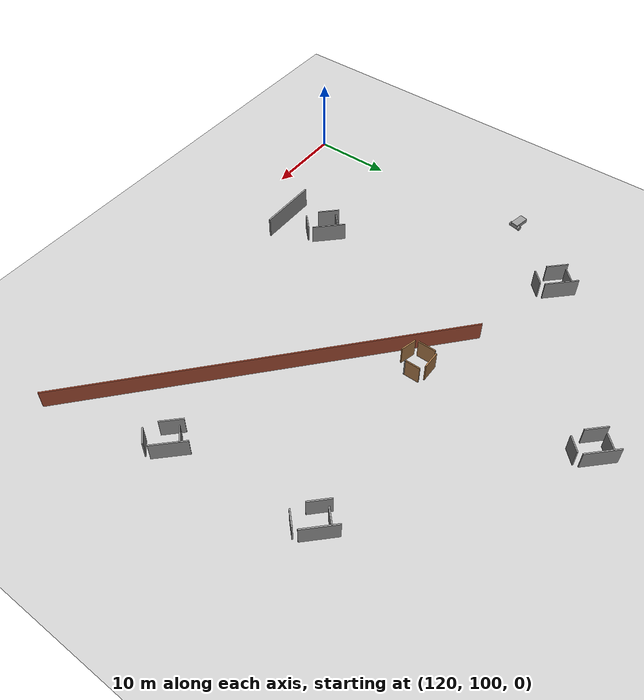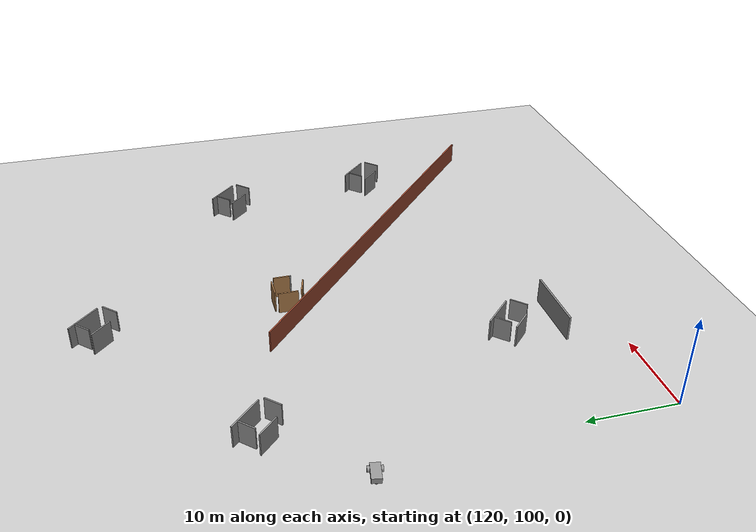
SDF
<sdf version="1.5">
 <world name="default">
  <model name="ground_plane">
   <static>1</static>
   <link name="link">
    <collision name="collision">
     <geometry><plane><normal>0 0 1</normal><size>100 100</size></plane></geometry>
     <surface><friction><ode><mu>100</mu><mu2>50</mu2></ode></friction></surface>
    </collision>
    <visual name="visual">
     <cast_shadows>0</cast_shadows>
     <geometry><plane><normal>0 0 1</normal><size>100 100</size></plane></geometry>
     <material>
      <script><uri>file://media/materials/scripts/gazebo.material</uri><name>Gazebo/Grey</name></script>
     </material>
    </visual>
   </link>
  </model>
  <model name="obs1_1_clone">
   <pose>146.543 133 0 0 -0 0</pose>
   <link name="Wall_10">
    <collision name="Wall_10_Collision">
     <geometry><box><size>2 0.15 2.5</size></box></geometry>
     <pose>0 0 1.25 0 -0 0</pose>
    </collision>
    <visual name="Wall_10_Visual">
     <pose>0 0 1.25 0 -0 0</pose>
     <geometry><box><size>2 0.15 2.5</size></box></geometry>
     <material>
      <script><uri>file://media/materials/scripts/gazebo.material</uri><name>Gazebo/Wood</name></script>
      <ambient>1 1 1 1</ambient>
     </material>
    </visual>
    <pose>-0.505188 -1.46687 0 0 0 -0.261799</pose>
   </link>
   <link name="Wall_2">
    <collision name="Wall_2_Collision">
     <geometry><box><size>2.25 0.15 2.5</size></box></geometry>
     <pose>0 0 1.25 0 -0 0</pose>
    </collision>
    <visual name="Wall_2_Visual">
     <pose>0 0 1.25 0 -0 0</pose>
     <geometry><box><size>2.25 0.15 2.5</size></box></geometry>
     <material>
      <script><uri>file://media/materials/scripts/gazebo.material</uri><name>Gazebo/Wood</name></script>
      <ambient>1 1 1 1</ambient>
     </material>
    </visual>
    <pose>-1.58039 0.313508 0 0 0 -1.5708</pose>
   </link>
   <link name="Wall_5">
    <collision name="Wall_5_Collision">
     <geometry><box><size>2.25 0.15 2.5</size></box></geometry>
     <pose>0 0 1.25 0 -0 0</pose>
    </collision>
    <visual name="Wall_5_Visual">
     <pose>0 0 1.25 0 -0 0</pose>
     <geometry><box><size>2.25 0.15 2.5</size></box></geometry>
     <material>
      <script><uri>file://media/materials/scripts/gazebo.material</uri><name>Gazebo/Wood</name></script>
      <ambient>1 1 1 1</ambient>
     </material>
    </visual>
    <pose>-0.185262 1.72313 0 0 -0 0</pose>
   </link>
   <link name="Wall_7">
    <collision name="Wall_7_Collision">
     <geometry><box><size>2 0.15 2.5</size></box></geometry>
     <pose>0 0 1.25 0 -0 0</pose>
    </collision>
    <visual name="Wall_7_Visual">
     <pose>0 0 1.25 0 -0 0</pose>
     <geometry><box><size>2 0.15 2.5</size></box></geometry>
     <material>
      <script><uri>file://media/materials/scripts/gazebo.material</uri><name>Gazebo/Wood</name></script>
      <ambient>1 1 1 1</ambient>
     </material>
    </visual>
    <pose>1.58039 0.398833 0 0 0 -1.5708</pose>
   </link>
   <link name="Wall_8">
    <collision name="Wall_8_Collision">
     <geometry><box><size>0.15 0.15 2.5</size></box></geometry>
     <pose>0 0 1.25 0 -0 0</pose>
    </collision>
    <visual name="Wall_8_Visual">
     <pose>0 0 1.25 0 -0 0</pose>
     <geometry><box><size>0.15 0.15 2.5</size></box></geometry>
     <material>
      <script><uri>file://media/materials/scripts/gazebo.material</uri><name>Gazebo/Grey</name></script>
      <ambient>1 1 1 1</ambient>
     </material>
    </visual>
    <pose>1.58039 -0.526167 0 0 -0 0</pose>
   </link>
   <static>1</static>
  </model>
  <model name="wall1_clone_0_clone">
   <pose>157 120 0 0 -0 2.41454</pose>
   <link name="Wall_0">
    <collision name="Wall_0_Collision">
     <geometry><box><size>50 0.15 2.5</size></box></geometry>
     <pose>0 0 1.25 0 -0 0</pose>
    </collision>
    <visual name="Wall_0_Visual">
     <pose>0 0 1.25 0 -0 0</pose>
     <geometry><box><size>50 0.15 2.5</size></box></geometry>
     <material>
      <script><uri>file://media/materials/scripts/gazebo.material</uri><name>Gazebo/Bricks</name></script>
      <ambient>1 1 1 1</ambient>
     </material>
    </visual>
    <pose>1e-06 0 0 0 -0 3.14159</pose>
   </link>
   <static>1</static>
  </model>
  <model name="grey_wall_clone_1_clone_0_clone_0">
   <static>1</static>
   <link name="link">
    <pose>0 0 1.4 0 -0 0</pose>
    <collision name="collision"><geometry><box><size>7.5 0.2 2.8</size></box></geometry></collision>
    <visual name="visual">
     <cast_shadows>0</cast_shadows>
     <geometry><box><size>7.5 0.2 2.8</size></box></geometry>
     <material>
      <script>
       <uri>model://grey_wall/materials/scripts</uri>
       <uri>model://grey_wall/materials/textures</uri>
       <name>vrc/grey_wall</name>
      </script>
     </material>
    </visual>
   </link>
   <pose>136 106 0 0 -0 0</pose>
  </model>
  <model name="obs2_5_clone_clone_0">
   <pose>135 111.597 0 0 -0 0</pose>
   <link name="Wall_0">
    <collision name="Wall_0_Collision">
     <geometry><box><size>2 0.15 2.5</size></box></geometry>
     <pose>0 0 1.25 0 -0 0</pose>
    </collision>
    <visual name="Wall_0_Visual">
     <pose>0 0 1.25 0 -0 0</pose>
     <geometry><box><size>2 0.15 2.5</size></box></geometry>
     <material>
      <script><uri>file://media/materials/scripts/gazebo.material</uri><name>Gazebo/Grey</name></script>
      <ambient>1 1 1 1</ambient>
     </material>
    </visual>
    <pose>-0.796332 1.10862 0 0 -0 0.785398</pose>
   </link>
   <link name="Wall_2">
    <collision name="Wall_2_Collision">
     <geometry><box><size>4.25 0.15 2.5</size></box></geometry>
     <pose>0 0 1.25 0 -0 0</pose>
    </collision>
    <visual name="Wall_2_Visual">
     <pose>0 0 1.25 0 -0 0</pose>
     <geometry><box><size>4.25 0.15 2.5</size></box></geometry>
     <material>
      <script><uri>file://media/materials/scripts/gazebo.material</uri><name>Gazebo/Grey</name></script>
      <ambient>1 1 1 1</ambient>
     </material>
    </visual>
    <pose>0.773928 0.982661 0 0 0 -0.785398</pose>
   </link>
   <link name="Wall_4">
    <collision name="Wall_4_Collision">
     <geometry><box><size>2.75 0.15 2.5</size></box></geometry>
     <pose>0 0 1.25 0 -0 0</pose>
    </collision>
    <visual name="Wall_4_Visual">
     <pose>0 0 1.25 0 -0 0</pose>
     <geometry><box><size>2.75 0.15 2.5</size></box></geometry>
     <material>
      <script><uri>file://media/materials/scripts/gazebo.material</uri><name>Gazebo/Grey</name></script>
      <ambient>1 1 1 1</ambient>
     </material>
    </visual>
    <pose>-1.45556 -0.740711 0 0 0 -0.785398</pose>
   </link>
   <link name="Wall_6">
    <collision name="Wall_6_Collision">
     <geometry><box><size>2 0.15 2.5</size></box></geometry>
     <pose>0 0 1.25 0 -0 0</pose>
    </collision>
    <visual name="Wall_6_Visual">
     <pose>0 0 1.25 0 -0 0</pose>
     <geometry><box><size>2 0.15 2.5</size></box></geometry>
     <material>
      <script><uri>file://media/materials/scripts/gazebo.material</uri><name>Gazebo/Grey</name></script>
      <ambient>1 1 1 1</ambient>
     </material>
    </visual>
    <pose>1.72073 -1.77816 0 0 -0 0.785398</pose>
   </link>
   <static>1</static>
  </model>
  <model name="follower_vehicle_clone">
   <pose>118.501 130.933 0.322842 0.000663 -0.00385 -0.189088</pose>
   <link name="chassis">
    <pose>-0.151427 -0 0.175 0 -0 0</pose>
    <inertial>
     <mass>1.14395</mass>
     <inertia>
      <ixx>0.126164</ixx>
      <ixy>0</ixy>
      <ixz>0</ixz>
      <iyy>0.416519</iyy>
      <iyz>0</iyz>
      <izz>0.481014</izz>
     </inertia>
    </inertial>
    <visual name="visual">
     <geometry><box><size>2.01142 1 0.568726</size></box></geometry>
     <material>
      <script><uri>file://media/materials/scripts/gazebo.material</uri><name>Gazebo/Grey</name></script>
     </material>
    </visual>
    <collision name="collision">
     <geometry><box><size>2.01142 1 0.568726</size></box></geometry>
     <surface>
      <friction><ode><mu>1</mu><mu2>1</mu2><fdir1>0 0 0</fdir1><slip1>0</slip1><slip2>0</slip2></ode></friction>
      <bounce><restitution_coefficient>0</restitution_coefficient><threshold>1e+06</threshold></bounce>
      <contact>
       <collide_without_contact>0</collide_without_contact>
       <collide_without_contact_bitmask>1</collide_without_contact_bitmask>
       <collide_bitmask>1</collide_bitmask>
       <ode>
        <soft_cfm>0</soft_cfm>
        <soft_erp>0.2</soft_erp>
        <kp>1e+13</kp>
        <kd>1</kd>
        <max_vel>0.01</max_vel>
        <min_depth>0</min_depth>
       </ode>
      </contact>
     </surface>
    </collision>
   </link>
   <link name="wheel_1">
    <pose>0.554283 0.625029 -0.025 1.5707 -0 0</pose>
    <inertial>
     <mass>2</mass>
     <inertia><ixx>0.145833</ixx><ixy>0</ixy><ixz>0</ixz><iyy>0.145833</iyy><iyz>0</iyz><izz>0.125</izz></inertia>
    </inertial>
    <visual name="visual">
     <geometry><cylinder><radius>0.3</radius><length>0.25</length></cylinder></geometry>
     <material>
      <script><uri>file://media/materials/scripts/gazebo.material</uri><name>Gazebo/Grey</name></script>
     </material>
    </visual>
    <collision name="collision">
     <geometry><cylinder><radius>0.3</radius><length>0.25</length></cylinder></geometry>
     <surface>
      <friction><ode><mu>1</mu><mu2>1</mu2><fdir1>0 0 0</fdir1><slip1>0</slip1><slip2>0</slip2></ode></friction>
      <bounce><restitution_coefficient>0</restitution_coefficient><threshold>1e+06</threshold></bounce>
      <contact>
       <collide_without_contact>0</collide_without_contact>
       <collide_without_contact_bitmask>1</collide_without_contact_bitmask>
       <collide_bitmask>1</collide_bitmask>
       <ode>
        <soft_cfm>0</soft_cfm>
        <soft_erp>0.2</soft_erp>
        <kp>1e+13</kp>
        <kd>1</kd>
        <max_vel>0.01</max_vel>
        <min_depth>0</min_depth>
       </ode>
      </contact>
     </surface>
    </collision>
   </link>
   <link name="wheel_2">
    <pose>0.554282 -0.625029 -0.025 1.5707 -0 0</pose>
    <inertial>
     <mass>2</mass>
     <inertia><ixx>0.145833</ixx><ixy>0</ixy><ixz>0</ixz><iyy>0.145833</iyy><iyz>0</iyz><izz>0.125</izz></inertia>
    </inertial>
    <visual name="visual">
     <geometry><cylinder><radius>0.3</radius><length>0.25</length></cylinder></geometry>
     <material>
      <script><uri>file://media/materials/scripts/gazebo.material</uri><name>Gazebo/Grey</name></script>
     </material>
    </visual>
    <collision name="collision">
     <geometry><cylinder><radius>0.3</radius><length>0.25</length></cylinder></geometry>
     <surface>
      <friction><ode><mu>1</mu><mu2>1</mu2><fdir1>0 0 0</fdir1><slip1>0</slip1><slip2>0</slip2></ode></friction>
      <bounce><restitution_coefficient>0</restitution_coefficient><threshold>1e+06</threshold></bounce>
      <contact>
       <collide_without_contact>0</collide_without_contact>
       <collide_without_contact_bitmask>1</collide_without_contact_bitmask>
       <collide_bitmask>1</collide_bitmask>
       <ode>
        <soft_cfm>0</soft_cfm>
        <soft_erp>0.2</soft_erp>
        <kp>1e+13</kp>
        <kd>1</kd>
        <max_vel>0.01</max_vel>
        <min_depth>0</min_depth>
       </ode>
      </contact>
     </surface>
    </collision>
   </link>
   <link name="caster">
    <pose>-0.957138 -0 -0.125 0 -0 0</pose>
    <inertial>
     <mass>1</mass>
     <inertia><ixx>0.1</ixx><ixy>0</ixy><ixz>0</ixz><iyy>0.1</iyy><iyz>0</iyz><izz>0.1</izz></inertia>
    </inertial>
    <visual name="visual">
     <geometry><sphere><radius>0.2</radius></sphere></geometry>
     <material>
      <script><uri>file://media/materials/scripts/gazebo.material</uri><name>Gazebo/Grey</name></script>
     </material>
    </visual>
    <collision name="collision">
     <geometry><sphere><radius>0.2</radius></sphere></geometry>
     <surface>
      <friction><ode><mu>1</mu><mu2>1</mu2><fdir1>0 0 0</fdir1><slip1>0</slip1><slip2>0</slip2></ode></friction>
      <bounce><restitution_coefficient>0</restitution_coefficient><threshold>1e+06</threshold></bounce>
      <contact>
       <collide_without_contact>0</collide_without_contact>
       <collide_without_contact_bitmask>1</collide_without_contact_bitmask>
       <collide_bitmask>1</collide_bitmask>
       <ode>
        <soft_cfm>0</soft_cfm>
        <soft_erp>0.2</soft_erp>
        <kp>1e+13</kp>
        <kd>1</kd>
        <max_vel>0.01</max_vel>
        <min_depth>0</min_depth>
       </ode>
      </contact>
     </surface>
    </collision>
   </link>
   <model name="depth_camera"/>
   <joint name="chassis_wheel_1_revolute" type="revolute">
    <parent>chassis</parent>
    <child>wheel_1</child>
    <axis>
     <xyz>0 0 1</xyz>
     <use_parent_model_frame>0</use_parent_model_frame>
     <limit>
      <lower>-1.79769e+308</lower>
      <upper>1.79769e+308</upper>
      <effort>-1</effort>
      <velocity>-1</velocity>
     </limit>
     <dynamics>
      <spring_reference>0</spring_reference>
      <spring_stiffness>0</spring_stiffness>
      <damping>0</damping>
      <friction>0</friction>
     </dynamics>
    </axis>
    <physics>
     <ode><limit><cfm>0</cfm><erp>0.2</erp></limit><suspension><cfm>0</cfm><erp>0.2</erp></suspension></ode>
    </physics>
   </joint>
   <joint name="chassis_wheel_2_revolute" type="revolute">
    <parent>chassis</parent>
    <child>wheel_2</child>
    <axis>
     <xyz>0 0 1</xyz>
     <use_parent_model_frame>0</use_parent_model_frame>
     <limit>
      <lower>-1.79769e+308</lower>
      <upper>1.79769e+308</upper>
      <effort>-1</effort>
      <velocity>-1</velocity>
     </limit>
     <dynamics>
      <spring_reference>0</spring_reference>
      <spring_stiffness>0</spring_stiffness>
      <damping>0</damping>
      <friction>0</friction>
     </dynamics>
    </axis>
    <physics>
     <ode><limit><cfm>0</cfm><erp>0.2</erp></limit><suspension><cfm>0</cfm><erp>0.2</erp></suspension></ode>
    </physics>
   </joint>
   <joint name="chassis_caster_ball" type="ball">
    <parent>chassis</parent>
    <child>caster</child>
    <physics>
     <ode><limit><cfm>0</cfm><erp>0.2</erp></limit><suspension><cfm>0</cfm><erp>0.2</erp></suspension></ode>
    </physics>
   </joint>
   <joint name="chassis_depth_camera_link_fixed" type="fixed">
    <parent>chassis</parent>
    <child>depth_camera::link</child>
    <physics>
     <ode><limit><cfm>0</cfm><erp>0.2</erp></limit><suspension><cfm>0</cfm><erp>0.2</erp></suspension></ode>
    </physics>
   </joint>
   <static>0</static>
   <plugin name="follower" filename="libFollowerPlugin.so"/>
  </model>
  <model name="obs2_5_clone_clone_clone_14">
   <pose>145 154 0 0 -0 0</pose>
   <link name="Wall_0">
    <collision name="Wall_0_Collision">
     <geometry><box><size>2 0.15 2.5</size></box></geometry>
     <pose>0 0 1.25 0 -0 0</pose>
    </collision>
    <visual name="Wall_0_Visual">
     <pose>0 0 1.25 0 -0 0</pose>
     <geometry><box><size>2 0.15 2.5</size></box></geometry>
     <material>
      <script><uri>file://media/materials/scripts/gazebo.material</uri><name>Gazebo/Grey</name></script>
      <ambient>1 1 1 1</ambient>
     </material>
    </visual>
    <pose>-0.796332 1.10862 0 0 -0 0.785398</pose>
   </link>
   <link name="Wall_2">
    <collision name="Wall_2_Collision">
     <geometry><box><size>4.25 0.15 2.5</size></box></geometry>
     <pose>0 0 1.25 0 -0 0</pose>
    </collision>
    <visual name="Wall_2_Visual">
     <pose>0 0 1.25 0 -0 0</pose>
     <geometry><box><size>4.25 0.15 2.5</size></box></geometry>
     <material>
      <script><uri>file://media/materials/scripts/gazebo.material</uri><name>Gazebo/Grey</name></script>
      <ambient>1 1 1 1</ambient>
     </material>
    </visual>
    <pose>0.773928 0.982661 0 0 0 -0.785398</pose>
   </link>
   <link name="Wall_4">
    <collision name="Wall_4_Collision">
     <geometry><box><size>2.75 0.15 2.5</size></box></geometry>
     <pose>0 0 1.25 0 -0 0</pose>
    </collision>
    <visual name="Wall_4_Visual">
     <pose>0 0 1.25 0 -0 0</pose>
     <geometry><box><size>2.75 0.15 2.5</size></box></geometry>
     <material>
      <script><uri>file://media/materials/scripts/gazebo.material</uri><name>Gazebo/Grey</name></script>
      <ambient>1 1 1 1</ambient>
     </material>
    </visual>
    <pose>-1.45556 -0.740711 0 0 0 -0.785398</pose>
   </link>
   <link name="Wall_6">
    <collision name="Wall_6_Collision">
     <geometry><box><size>2 0.15 2.5</size></box></geometry>
     <pose>0 0 1.25 0 -0 0</pose>
    </collision>
    <visual name="Wall_6_Visual">
     <pose>0 0 1.25 0 -0 0</pose>
     <geometry><box><size>2 0.15 2.5</size></box></geometry>
     <material>
      <script><uri>file://media/materials/scripts/gazebo.material</uri><name>Gazebo/Grey</name></script>
      <ambient>1 1 1 1</ambient>
     </material>
    </visual>
    <pose>1.72073 -1.77816 0 0 -0 0.785398</pose>
   </link>
   <static>1</static>
  </model>
  <model name="obs2_5_clone_clone_clone_15">
   <pose>169 136 0 0 -0 0</pose>
   <link name="Wall_0">
    <collision name="Wall_0_Collision">
     <geometry><box><size>2 0.15 2.5</size></box></geometry>
     <pose>0 0 1.25 0 -0 0</pose>
    </collision>
    <visual name="Wall_0_Visual">
     <pose>0 0 1.25 0 -0 0</pose>
     <geometry><box><size>2 0.15 2.5</size></box></geometry>
     <material>
      <script><uri>file://media/materials/scripts/gazebo.material</uri><name>Gazebo/Grey</name></script>
      <ambient>1 1 1 1</ambient>
     </material>
    </visual>
    <pose>-0.796332 1.10862 0 0 -0 0.785398</pose>
   </link>
   <link name="Wall_2">
    <collision name="Wall_2_Collision">
     <geometry><box><size>4.25 0.15 2.5</size></box></geometry>
     <pose>0 0 1.25 0 -0 0</pose>
    </collision>
    <visual name="Wall_2_Visual">
     <pose>0 0 1.25 0 -0 0</pose>
     <geometry><box><size>4.25 0.15 2.5</size></box></geometry>
     <material>
      <script><uri>file://media/materials/scripts/gazebo.material</uri><name>Gazebo/Grey</name></script>
      <ambient>1 1 1 1</ambient>
     </material>
    </visual>
    <pose>0.773928 0.982661 0 0 0 -0.785398</pose>
   </link>
   <link name="Wall_4">
    <collision name="Wall_4_Collision">
     <geometry><box><size>2.75 0.15 2.5</size></box></geometry>
     <pose>0 0 1.25 0 -0 0</pose>
    </collision>
    <visual name="Wall_4_Visual">
     <pose>0 0 1.25 0 -0 0</pose>
     <geometry><box><size>2.75 0.15 2.5</size></box></geometry>
     <material>
      <script><uri>file://media/materials/scripts/gazebo.material</uri><name>Gazebo/Grey</name></script>
      <ambient>1 1 1 1</ambient>
     </material>
    </visual>
    <pose>-1.45556 -0.740711 0 0 0 -0.785398</pose>
   </link>
   <link name="Wall_6">
    <collision name="Wall_6_Collision">
     <geometry><box><size>2 0.15 2.5</size></box></geometry>
     <pose>0 0 1.25 0 -0 0</pose>
    </collision>
    <visual name="Wall_6_Visual">
     <pose>0 0 1.25 0 -0 0</pose>
     <geometry><box><size>2 0.15 2.5</size></box></geometry>
     <material>
      <script><uri>file://media/materials/scripts/gazebo.material</uri><name>Gazebo/Grey</name></script>
      <ambient>1 1 1 1</ambient>
     </material>
    </visual>
    <pose>1.72073 -1.77816 0 0 -0 0.785398</pose>
   </link>
   <static>1</static>
  </model>
  <model name="obs2_5_clone_clone_clone_16">
   <pose>126 140 0 0 -0 0</pose>
   <link name="Wall_0">
    <collision name="Wall_0_Collision">
     <geometry><box><size>2 0.15 2.5</size></box></geometry>
     <pose>0 0 1.25 0 -0 0</pose>
    </collision>
    <visual name="Wall_0_Visual">
     <pose>0 0 1.25 0 -0 0</pose>
     <geometry><box><size>2 0.15 2.5</size></box></geometry>
     <material>
      <script><uri>file://media/materials/scripts/gazebo.material</uri><name>Gazebo/Grey</name></script>
      <ambient>1 1 1 1</ambient>
     </material>
    </visual>
    <pose>-0.796332 1.10862 0 0 -0 0.785398</pose>
   </link>
   <link name="Wall_2">
    <collision name="Wall_2_Collision">
     <geometry><box><size>4.25 0.15 2.5</size></box></geometry>
     <pose>0 0 1.25 0 -0 0</pose>
    </collision>
    <visual name="Wall_2_Visual">
     <pose>0 0 1.25 0 -0 0</pose>
     <geometry><box><size>4.25 0.15 2.5</size></box></geometry>
     <material>
      <script><uri>file://media/materials/scripts/gazebo.material</uri><name>Gazebo/Grey</name></script>
      <ambient>1 1 1 1</ambient>
     </material>
    </visual>
    <pose>0.773928 0.982661 0 0 0 -0.785398</pose>
   </link>
   <link name="Wall_4">
    <collision name="Wall_4_Collision">
     <geometry><box><size>2.75 0.15 2.5</size></box></geometry>
     <pose>0 0 1.25 0 -0 0</pose>
    </collision>
    <visual name="Wall_4_Visual">
     <pose>0 0 1.25 0 -0 0</pose>
     <geometry><box><size>2.75 0.15 2.5</size></box></geometry>
     <material>
      <script><uri>file://media/materials/scripts/gazebo.material</uri><name>Gazebo/Grey</name></script>
      <ambient>1 1 1 1</ambient>
     </material>
    </visual>
    <pose>-1.45556 -0.740711 0 0 0 -0.785398</pose>
   </link>
   <link name="Wall_6">
    <collision name="Wall_6_Collision">
     <geometry><box><size>2 0.15 2.5</size></box></geometry>
     <pose>0 0 1.25 0 -0 0</pose>
    </collision>
    <visual name="Wall_6_Visual">
     <pose>0 0 1.25 0 -0 0</pose>
     <geometry><box><size>2 0.15 2.5</size></box></geometry>
     <material>
      <script><uri>file://media/materials/scripts/gazebo.material</uri><name>Gazebo/Grey</name></script>
      <ambient>1 1 1 1</ambient>
     </material>
    </visual>
    <pose>1.72073 -1.77816 0 0 -0 0.785398</pose>
   </link>
   <static>1</static>
  </model>
  <model name="obs2_5_clone_clone_clone_17">
   <pose>171 118 0 0 -0 0</pose>
   <link name="Wall_0">
    <collision name="Wall_0_Collision">
     <geometry><box><size>2 0.15 2.5</size></box></geometry>
     <pose>0 0 1.25 0 -0 0</pose>
    </collision>
    <visual name="Wall_0_Visual">
     <pose>0 0 1.25 0 -0 0</pose>
     <geometry><box><size>2 0.15 2.5</size></box></geometry>
     <material>
      <script><uri>file://media/materials/scripts/gazebo.material</uri><name>Gazebo/Grey</name></script>
      <ambient>1 1 1 1</ambient>
     </material>
    </visual>
    <pose>-0.796332 1.10862 0 0 -0 0.785398</pose>
   </link>
   <link name="Wall_2">
    <collision name="Wall_2_Collision">
     <geometry><box><size>4.25 0.15 2.5</size></box></geometry>
     <pose>0 0 1.25 0 -0 0</pose>
    </collision>
    <visual name="Wall_2_Visual">
     <pose>0 0 1.25 0 -0 0</pose>
     <geometry><box><size>4.25 0.15 2.5</size></box></geometry>
     <material>
      <script><uri>file://media/materials/scripts/gazebo.material</uri><name>Gazebo/Grey</name></script>
      <ambient>1 1 1 1</ambient>
     </material>
    </visual>
    <pose>0.773928 0.982661 0 0 0 -0.785398</pose>
   </link>
   <link name="Wall_4">
    <collision name="Wall_4_Collision">
     <geometry><box><size>2.75 0.15 2.5</size></box></geometry>
     <pose>0 0 1.25 0 -0 0</pose>
    </collision>
    <visual name="Wall_4_Visual">
     <pose>0 0 1.25 0 -0 0</pose>
     <geometry><box><size>2.75 0.15 2.5</size></box></geometry>
     <material>
      <script><uri>file://media/materials/scripts/gazebo.material</uri><name>Gazebo/Grey</name></script>
      <ambient>1 1 1 1</ambient>
     </material>
    </visual>
    <pose>-1.45556 -0.740711 0 0 0 -0.785398</pose>
   </link>
   <link name="Wall_6">
    <collision name="Wall_6_Collision">
     <geometry><box><size>2 0.15 2.5</size></box></geometry>
     <pose>0 0 1.25 0 -0 0</pose>
    </collision>
    <visual name="Wall_6_Visual">
     <pose>0 0 1.25 0 -0 0</pose>
     <geometry><box><size>2 0.15 2.5</size></box></geometry>
     <material>
      <script><uri>file://media/materials/scripts/gazebo.material</uri><name>Gazebo/Grey</name></script>
      <ambient>1 1 1 1</ambient>
     </material>
    </visual>
    <pose>1.72073 -1.77816 0 0 -0 0.785398</pose>
   </link>
   <static>1</static>
  </model>
 </world>
</sdf>
